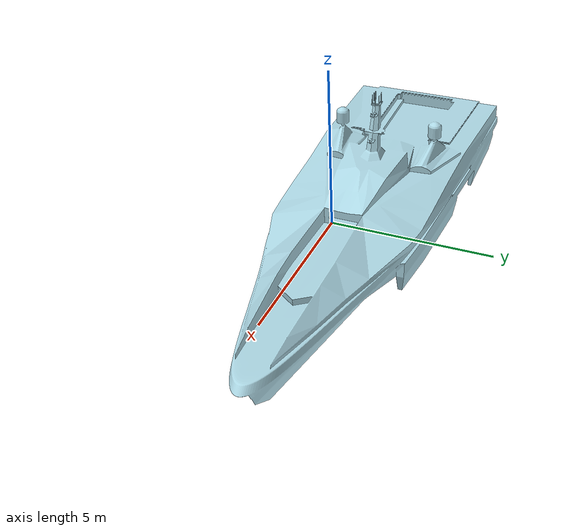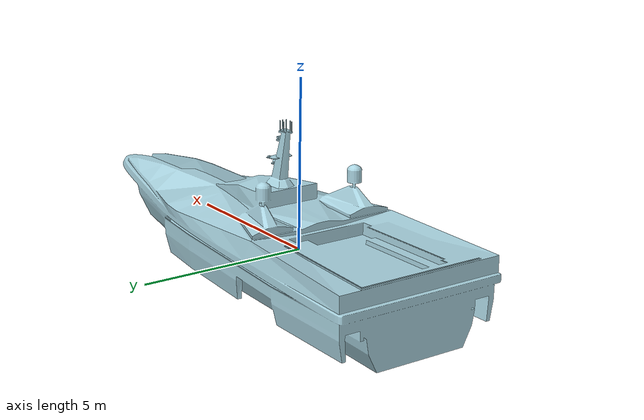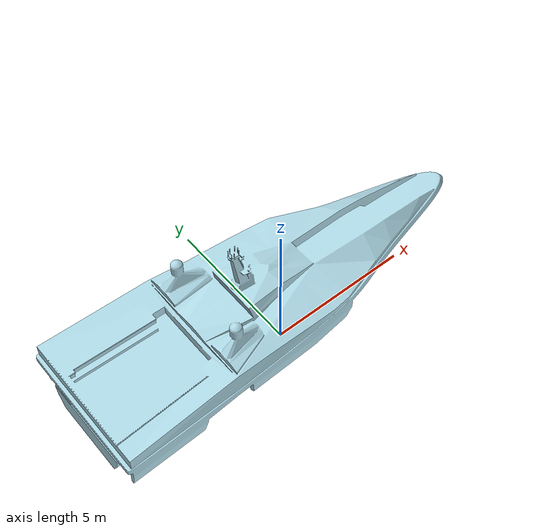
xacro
<?xml version="1.0" encoding="utf-8"?>
<robot xmlns:xacro="http://ros.org/wiki/xacro" name="games">
  <link name="base_link">
   <visual>
      <geometry>
        <mesh filename="package://vrx_gazebo/models/ship/mesh/war_ship_5.DAE"/>
      </geometry>
      <origin rpy="1.5708 0 0" xyz="0.7 1.1 -0.6"/>

  <material name="LightBlue">
    <color rgba="0.68 0.85 0.9 1.0"/>
  </material>

    </visual>

    <collision>
      <geometry>
        <mesh filename="package://vrx_gazebo/models/ship/mesh/war_ship_5.DAE"/>
      </geometry>
      <origin rpy="3.1415926535 0 3.1415926535" xyz="3 0 0"/>
    </collision>

    <inertial>
      <origin
        xyz="2.4561 -0.00018968 0.0026061"
        rpy="0 0 0" />
      <mass
        value="25" />
      <inertia
        ixx="120"
        ixy="0.0"
        ixz="0.0"
        iyy="393"
        iyz="0.0"
        izz="2.76" />
    </inertial>
  </link>

    <gazebo>
      <plugin name="usv_dynamics_games" filename="libusv_gazebo_dynamics_plugin.so">
        <bodyName>base_link</bodyName>
        <!-- Must be same as the ocean model!-->
        <waterLevel>0</waterLevel>
        <waterDensity>997.8</waterDensity>
        <!-- Added mass -->
        <xDotU>0.0</xDotU>
        <yDotV>0.0</yDotV>
        <nDotR>0.0</nDotR>
        <!-- Linear and quadratic drag -->
        <xU>51.3</xU>
        <xUU>72.4</xUU>
        <yV>40.0</yV>
        <yVV>0.0</yVV>
        <zW>500.0</zW>
        <kP>50.0</kP>
        <mQ>50.0</mQ>
        <nR>400.0</nR>
        <nRR>0.0</nRR>
        <!-- General dimensions -->
        <hullRadius>0.213</hullRadius>
        <boatWidth>2.4</boatWidth>
        <boatLength>4.9</boatLength>
        <!-- Length discretization, AKA, "N" -->
        <length_n>2</length_n>
        <!-- Wave model -->
        <wave_model>ocean_waves</wave_model>
      </plugin>
    </gazebo>

</robot>
